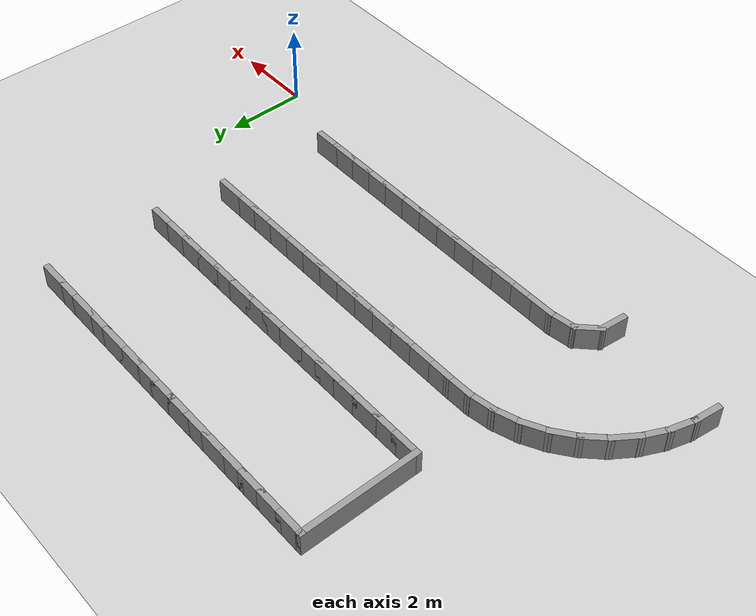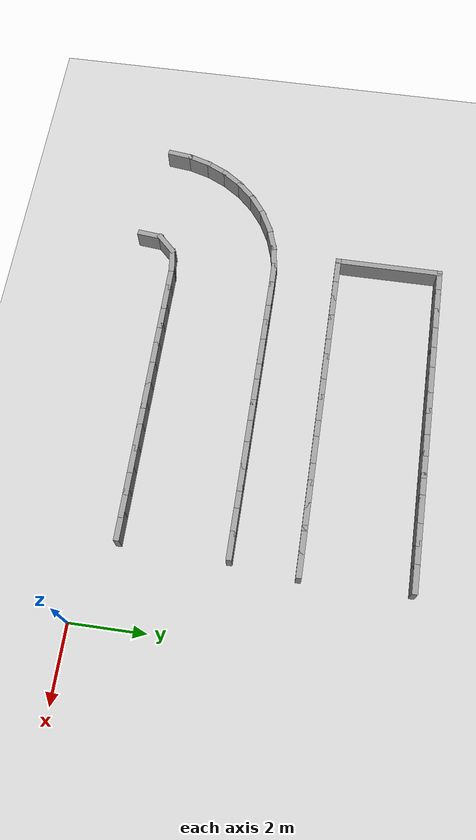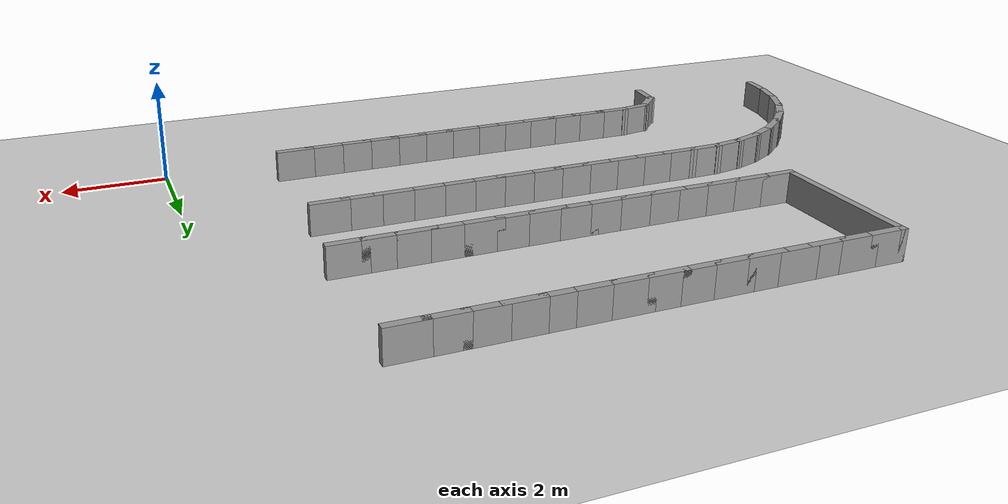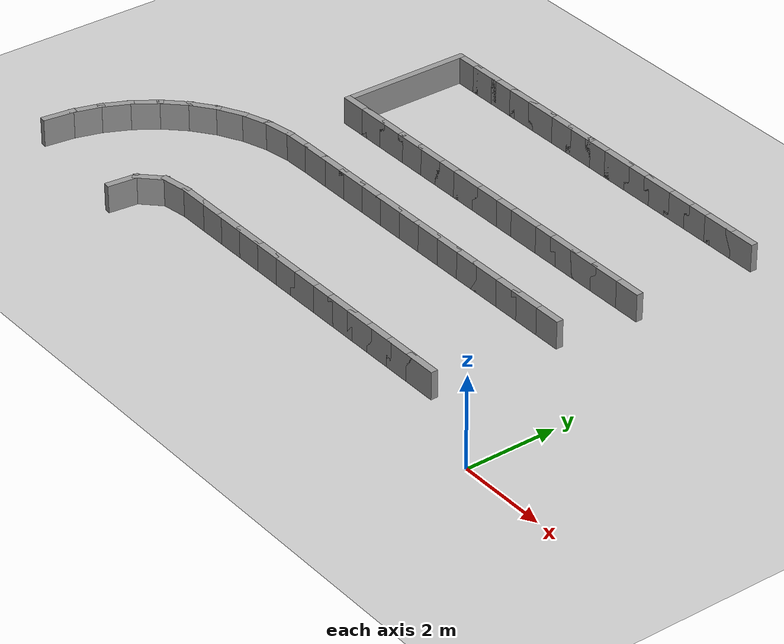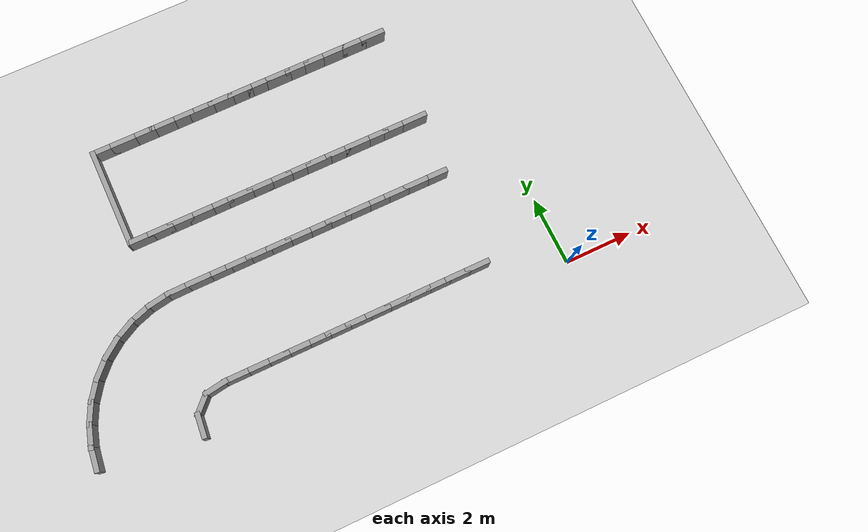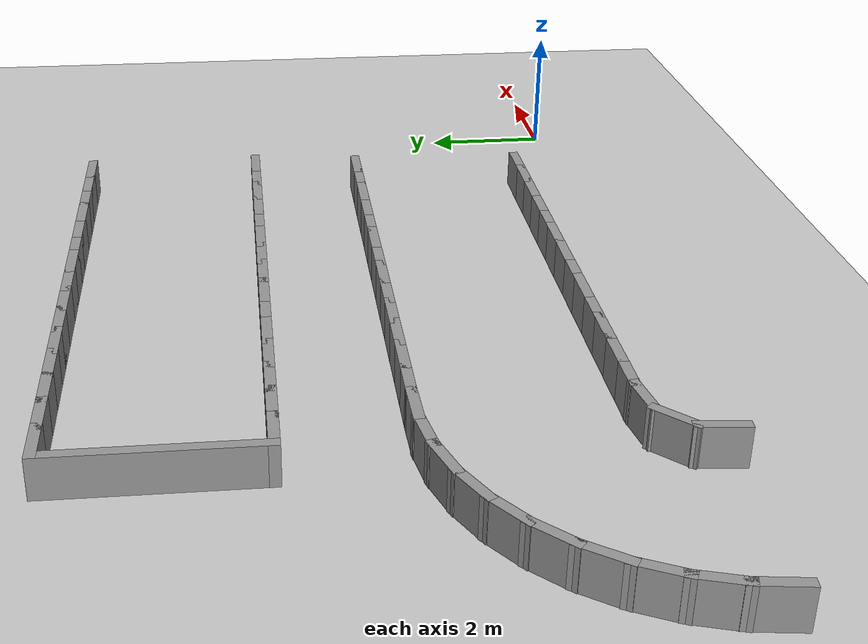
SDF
<sdf version="1.7">
 <world name="default">
  <model name="ground_plane">
   <static>1</static>
   <link name="link">
    <collision name="collision">
     <geometry><plane><normal>0 0 1</normal><size>100 100</size></plane></geometry>
     <surface><friction><ode><mu>100</mu><mu2>50</mu2></ode></friction></surface>
    </collision>
    <visual name="visual">
     <cast_shadows>0</cast_shadows>
     <geometry><plane><normal>0 0 1</normal><size>100 100</size></plane></geometry>
     <material>
      <script><uri>file://media/materials/scripts/gazebo.material</uri><name>Gazebo/Grey</name></script>
     </material>
    </visual>
   </link>
  </model>
  <model name="rand_serp_00">
   <link name="Wall_0">
    <collision name="Wall_0_Collision">
     <geometry><box><size>0.7500 0.1500 0.6000</size></box></geometry>
     <pose>0 0 0.3000 0 -0 0</pose>
    </collision>
    <visual name="Wall_0_Visual">
     <pose>0 0 0.3000 0 -0 0</pose>
     <geometry><box><size>0.7500 0.1500 0.6000</size></box></geometry>
     <material>
      <script><uri>file://media/materials/scripts/gazebo.material</uri><name>Gazebo/Grey</name></script>
      <ambient>1 1 1 1</ambient>
     </material>
    </visual>
    <pose>-10.5433 8.3501 0 0 -0 0.00000</pose>
   </link>
   <link name="Wall_1">
    <collision name="Wall_1_Collision">
     <geometry><box><size>0.7500 0.1500 0.6000</size></box></geometry>
     <pose>0 0 0.3000 0 -0 0</pose>
    </collision>
    <visual name="Wall_1_Visual">
     <pose>0 0 0.3000 0 -0 0</pose>
     <geometry><box><size>0.7500 0.1500 0.6000</size></box></geometry>
     <material>
      <script><uri>file://media/materials/scripts/gazebo.material</uri><name>Gazebo/Grey</name></script>
      <ambient>1 1 1 1</ambient>
     </material>
    </visual>
    <pose>-9.9433 8.3501 0 0 -0 0.00000</pose>
   </link>
   <link name="Wall_2">
    <collision name="Wall_2_Collision">
     <geometry><box><size>0.7500 0.1500 0.6000</size></box></geometry>
     <pose>0 0 0.3000 0 -0 0</pose>
    </collision>
    <visual name="Wall_2_Visual">
     <pose>0 0 0.3000 0 -0 0</pose>
     <geometry><box><size>0.7500 0.1500 0.6000</size></box></geometry>
     <material>
      <script><uri>file://media/materials/scripts/gazebo.material</uri><name>Gazebo/Grey</name></script>
      <ambient>1 1 1 1</ambient>
     </material>
    </visual>
    <pose>-9.3433 8.3501 0 0 -0 0.00000</pose>
   </link>
   <link name="Wall_3">
    <collision name="Wall_3_Collision">
     <geometry><box><size>0.7500 0.1500 0.6000</size></box></geometry>
     <pose>0 0 0.3000 0 -0 0</pose>
    </collision>
    <visual name="Wall_3_Visual">
     <pose>0 0 0.3000 0 -0 0</pose>
     <geometry><box><size>0.7500 0.1500 0.6000</size></box></geometry>
     <material>
      <script><uri>file://media/materials/scripts/gazebo.material</uri><name>Gazebo/Grey</name></script>
      <ambient>1 1 1 1</ambient>
     </material>
    </visual>
    <pose>-8.7433 8.3501 0 0 -0 0.00000</pose>
   </link>
   <link name="Wall_4">
    <collision name="Wall_4_Collision">
     <geometry><box><size>0.7500 0.1500 0.6000</size></box></geometry>
     <pose>0 0 0.3000 0 -0 0</pose>
    </collision>
    <visual name="Wall_4_Visual">
     <pose>0 0 0.3000 0 -0 0</pose>
     <geometry><box><size>0.7500 0.1500 0.6000</size></box></geometry>
     <material>
      <script><uri>file://media/materials/scripts/gazebo.material</uri><name>Gazebo/Grey</name></script>
      <ambient>1 1 1 1</ambient>
     </material>
    </visual>
    <pose>-8.1433 8.3501 0 0 -0 0.00000</pose>
   </link>
   <link name="Wall_5">
    <collision name="Wall_5_Collision">
     <geometry><box><size>0.7500 0.1500 0.6000</size></box></geometry>
     <pose>0 0 0.3000 0 -0 0</pose>
    </collision>
    <visual name="Wall_5_Visual">
     <pose>0 0 0.3000 0 -0 0</pose>
     <geometry><box><size>0.7500 0.1500 0.6000</size></box></geometry>
     <material>
      <script><uri>file://media/materials/scripts/gazebo.material</uri><name>Gazebo/Grey</name></script>
      <ambient>1 1 1 1</ambient>
     </material>
    </visual>
    <pose>-7.5433 8.3501 0 0 -0 0.00000</pose>
   </link>
   <link name="Wall_6">
    <collision name="Wall_6_Collision">
     <geometry><box><size>0.7500 0.1500 0.6000</size></box></geometry>
     <pose>0 0 0.3000 0 -0 0</pose>
    </collision>
    <visual name="Wall_6_Visual">
     <pose>0 0 0.3000 0 -0 0</pose>
     <geometry><box><size>0.7500 0.1500 0.6000</size></box></geometry>
     <material>
      <script><uri>file://media/materials/scripts/gazebo.material</uri><name>Gazebo/Grey</name></script>
      <ambient>1 1 1 1</ambient>
     </material>
    </visual>
    <pose>-6.9433 8.3501 0 0 -0 0.00000</pose>
   </link>
   <link name="Wall_7">
    <collision name="Wall_7_Collision">
     <geometry><box><size>0.7500 0.1500 0.6000</size></box></geometry>
     <pose>0 0 0.3000 0 -0 0</pose>
    </collision>
    <visual name="Wall_7_Visual">
     <pose>0 0 0.3000 0 -0 0</pose>
     <geometry><box><size>0.7500 0.1500 0.6000</size></box></geometry>
     <material>
      <script><uri>file://media/materials/scripts/gazebo.material</uri><name>Gazebo/Grey</name></script>
      <ambient>1 1 1 1</ambient>
     </material>
    </visual>
    <pose>-6.3433 8.3501 0 0 -0 0.00000</pose>
   </link>
   <link name="Wall_8">
    <collision name="Wall_8_Collision">
     <geometry><box><size>0.7500 0.1500 0.6000</size></box></geometry>
     <pose>0 0 0.3000 0 -0 0</pose>
    </collision>
    <visual name="Wall_8_Visual">
     <pose>0 0 0.3000 0 -0 0</pose>
     <geometry><box><size>0.7500 0.1500 0.6000</size></box></geometry>
     <material>
      <script><uri>file://media/materials/scripts/gazebo.material</uri><name>Gazebo/Grey</name></script>
      <ambient>1 1 1 1</ambient>
     </material>
    </visual>
    <pose>-5.7433 8.3501 0 0 -0 0.00000</pose>
   </link>
   <link name="Wall_9">
    <collision name="Wall_9_Collision">
     <geometry><box><size>0.7500 0.1500 0.6000</size></box></geometry>
     <pose>0 0 0.3000 0 -0 0</pose>
    </collision>
    <visual name="Wall_9_Visual">
     <pose>0 0 0.3000 0 -0 0</pose>
     <geometry><box><size>0.7500 0.1500 0.6000</size></box></geometry>
     <material>
      <script><uri>file://media/materials/scripts/gazebo.material</uri><name>Gazebo/Grey</name></script>
      <ambient>1 1 1 1</ambient>
     </material>
    </visual>
    <pose>-5.1433 8.3501 0 0 -0 0.00000</pose>
   </link>
   <link name="Wall_10">
    <collision name="Wall_10_Collision">
     <geometry><box><size>0.7500 0.1500 0.6000</size></box></geometry>
     <pose>0 0 0.3000 0 -0 0</pose>
    </collision>
    <visual name="Wall_10_Visual">
     <pose>0 0 0.3000 0 -0 0</pose>
     <geometry><box><size>0.7500 0.1500 0.6000</size></box></geometry>
     <material>
      <script><uri>file://media/materials/scripts/gazebo.material</uri><name>Gazebo/Grey</name></script>
      <ambient>1 1 1 1</ambient>
     </material>
    </visual>
    <pose>-4.5433 8.3501 0 0 -0 0.00000</pose>
   </link>
   <link name="Wall_11">
    <collision name="Wall_11_Collision">
     <geometry><box><size>0.7500 0.1500 0.6000</size></box></geometry>
     <pose>0 0 0.3000 0 -0 0</pose>
    </collision>
    <visual name="Wall_11_Visual">
     <pose>0 0 0.3000 0 -0 0</pose>
     <geometry><box><size>0.7500 0.1500 0.6000</size></box></geometry>
     <material>
      <script><uri>file://media/materials/scripts/gazebo.material</uri><name>Gazebo/Grey</name></script>
      <ambient>1 1 1 1</ambient>
     </material>
    </visual>
    <pose>-3.9433 8.3501 0 0 -0 0.00000</pose>
   </link>
   <link name="Wall_12">
    <collision name="Wall_12_Collision">
     <geometry><box><size>0.7500 0.1500 0.6000</size></box></geometry>
     <pose>0 0 0.3000 0 -0 0</pose>
    </collision>
    <visual name="Wall_12_Visual">
     <pose>0 0 0.3000 0 -0 0</pose>
     <geometry><box><size>0.7500 0.1500 0.6000</size></box></geometry>
     <material>
      <script><uri>file://media/materials/scripts/gazebo.material</uri><name>Gazebo/Grey</name></script>
      <ambient>1 1 1 1</ambient>
     </material>
    </visual>
    <pose>-3.3433 8.3501 0 0 -0 0.00000</pose>
   </link>
   <link name="Wall_13">
    <collision name="Wall_13_Collision">
     <geometry><box><size>0.7500 0.1500 0.6000</size></box></geometry>
     <pose>0 0 0.3000 0 -0 0</pose>
    </collision>
    <visual name="Wall_13_Visual">
     <pose>0 0 0.3000 0 -0 0</pose>
     <geometry><box><size>0.7500 0.1500 0.6000</size></box></geometry>
     <material>
      <script><uri>file://media/materials/scripts/gazebo.material</uri><name>Gazebo/Grey</name></script>
      <ambient>1 1 1 1</ambient>
     </material>
    </visual>
    <pose>-2.7433 8.3501 0 0 -0 0.00000</pose>
   </link>
   <link name="Wall_14">
    <collision name="Wall_14_Collision">
     <geometry><box><size>0.7500 0.1500 0.6000</size></box></geometry>
     <pose>0 0 0.3000 0 -0 0</pose>
    </collision>
    <visual name="Wall_14_Visual">
     <pose>0 0 0.3000 0 -0 0</pose>
     <geometry><box><size>0.7500 0.1500 0.6000</size></box></geometry>
     <material>
      <script><uri>file://media/materials/scripts/gazebo.material</uri><name>Gazebo/Grey</name></script>
      <ambient>1 1 1 1</ambient>
     </material>
    </visual>
    <pose>-2.1433 8.3501 0 0 -0 0.00000</pose>
   </link>
   <link name="Wall_75">
    <collision name="Wall_75_Collision">
     <geometry><box><size>0.7500 0.1500 0.6000</size></box></geometry>
     <pose>0 0 0.3000 0 -0 0</pose>
    </collision>
    <visual name="Wall_75_Visual">
     <pose>0 0 0.3000 0 -0 0</pose>
     <geometry><box><size>0.7500 0.1500 0.6000</size></box></geometry>
     <material>
      <script><uri>file://media/materials/scripts/gazebo.material</uri><name>Gazebo/Grey</name></script>
      <ambient>1 1 1 1</ambient>
     </material>
    </visual>
    <pose>-2.4404 0.8823 0 0 -0 3.14159</pose>
   </link>
   <link name="Wall_76">
    <collision name="Wall_76_Collision">
     <geometry><box><size>0.7500 0.1500 0.6000</size></box></geometry>
     <pose>0 0 0.3000 0 -0 0</pose>
    </collision>
    <visual name="Wall_76_Visual">
     <pose>0 0 0.3000 0 -0 0</pose>
     <geometry><box><size>0.7500 0.1500 0.6000</size></box></geometry>
     <material>
      <script><uri>file://media/materials/scripts/gazebo.material</uri><name>Gazebo/Grey</name></script>
      <ambient>1 1 1 1</ambient>
     </material>
    </visual>
    <pose>-3.0404 0.8823 0 0 -0 3.14159</pose>
   </link>
   <link name="Wall_77">
    <collision name="Wall_77_Collision">
     <geometry><box><size>0.7500 0.1500 0.6000</size></box></geometry>
     <pose>0 0 0.3000 0 -0 0</pose>
    </collision>
    <visual name="Wall_77_Visual">
     <pose>0 0 0.3000 0 -0 0</pose>
     <geometry><box><size>0.7500 0.1500 0.6000</size></box></geometry>
     <material>
      <script><uri>file://media/materials/scripts/gazebo.material</uri><name>Gazebo/Grey</name></script>
      <ambient>1 1 1 1</ambient>
     </material>
    </visual>
    <pose>-3.6404 0.8823 0 0 -0 3.14159</pose>
   </link>
   <link name="Wall_78">
    <collision name="Wall_78_Collision">
     <geometry><box><size>0.7500 0.1500 0.6000</size></box></geometry>
     <pose>0 0 0.3000 0 -0 0</pose>
    </collision>
    <visual name="Wall_78_Visual">
     <pose>0 0 0.3000 0 -0 0</pose>
     <geometry><box><size>0.7500 0.1500 0.6000</size></box></geometry>
     <material>
      <script><uri>file://media/materials/scripts/gazebo.material</uri><name>Gazebo/Grey</name></script>
      <ambient>1 1 1 1</ambient>
     </material>
    </visual>
    <pose>-4.2404 0.8823 0 0 -0 3.14159</pose>
   </link>
   <link name="Wall_79">
    <collision name="Wall_79_Collision">
     <geometry><box><size>0.7500 0.1500 0.6000</size></box></geometry>
     <pose>0 0 0.3000 0 -0 0</pose>
    </collision>
    <visual name="Wall_79_Visual">
     <pose>0 0 0.3000 0 -0 0</pose>
     <geometry><box><size>0.7500 0.1500 0.6000</size></box></geometry>
     <material>
      <script><uri>file://media/materials/scripts/gazebo.material</uri><name>Gazebo/Grey</name></script>
      <ambient>1 1 1 1</ambient>
     </material>
    </visual>
    <pose>-4.8404 0.8823 0 0 -0 3.14159</pose>
   </link>
   <link name="Wall_80">
    <collision name="Wall_80_Collision">
     <geometry><box><size>0.7500 0.1500 0.6000</size></box></geometry>
     <pose>0 0 0.3000 0 -0 0</pose>
    </collision>
    <visual name="Wall_80_Visual">
     <pose>0 0 0.3000 0 -0 0</pose>
     <geometry><box><size>0.7500 0.1500 0.6000</size></box></geometry>
     <material>
      <script><uri>file://media/materials/scripts/gazebo.material</uri><name>Gazebo/Grey</name></script>
      <ambient>1 1 1 1</ambient>
     </material>
    </visual>
    <pose>-5.4404 0.8823 0 0 -0 3.14159</pose>
   </link>
   <link name="Wall_81">
    <collision name="Wall_81_Collision">
     <geometry><box><size>0.7500 0.1500 0.6000</size></box></geometry>
     <pose>0 0 0.3000 0 -0 0</pose>
    </collision>
    <visual name="Wall_81_Visual">
     <pose>0 0 0.3000 0 -0 0</pose>
     <geometry><box><size>0.7500 0.1500 0.6000</size></box></geometry>
     <material>
      <script><uri>file://media/materials/scripts/gazebo.material</uri><name>Gazebo/Grey</name></script>
      <ambient>1 1 1 1</ambient>
     </material>
    </visual>
    <pose>-6.0404 0.8823 0 0 -0 3.14159</pose>
   </link>
   <link name="Wall_82">
    <collision name="Wall_82_Collision">
     <geometry><box><size>0.7500 0.1500 0.6000</size></box></geometry>
     <pose>0 0 0.3000 0 -0 0</pose>
    </collision>
    <visual name="Wall_82_Visual">
     <pose>0 0 0.3000 0 -0 0</pose>
     <geometry><box><size>0.7500 0.1500 0.6000</size></box></geometry>
     <material>
      <script><uri>file://media/materials/scripts/gazebo.material</uri><name>Gazebo/Grey</name></script>
      <ambient>1 1 1 1</ambient>
     </material>
    </visual>
    <pose>-6.6404 0.8823 0 0 -0 3.14159</pose>
   </link>
   <link name="Wall_83">
    <collision name="Wall_83_Collision">
     <geometry><box><size>0.7500 0.1500 0.6000</size></box></geometry>
     <pose>0 0 0.3000 0 -0 0</pose>
    </collision>
    <visual name="Wall_83_Visual">
     <pose>0 0 0.3000 0 -0 0</pose>
     <geometry><box><size>0.7500 0.1500 0.6000</size></box></geometry>
     <material>
      <script><uri>file://media/materials/scripts/gazebo.material</uri><name>Gazebo/Grey</name></script>
      <ambient>1 1 1 1</ambient>
     </material>
    </visual>
    <pose>-7.2404 0.8823 0 0 -0 3.14159</pose>
   </link>
   <link name="Wall_84">
    <collision name="Wall_84_Collision">
     <geometry><box><size>0.7500 0.1500 0.6000</size></box></geometry>
     <pose>0 0 0.3000 0 -0 0</pose>
    </collision>
    <visual name="Wall_84_Visual">
     <pose>0 0 0.3000 0 -0 0</pose>
     <geometry><box><size>0.7500 0.1500 0.6000</size></box></geometry>
     <material>
      <script><uri>file://media/materials/scripts/gazebo.material</uri><name>Gazebo/Grey</name></script>
      <ambient>1 1 1 1</ambient>
     </material>
    </visual>
    <pose>-7.8404 0.8823 0 0 -0 3.14159</pose>
   </link>
   <link name="Wall_85">
    <collision name="Wall_85_Collision">
     <geometry><box><size>0.7500 0.1500 0.6000</size></box></geometry>
     <pose>0 0 0.3000 0 -0 0</pose>
    </collision>
    <visual name="Wall_85_Visual">
     <pose>0 0 0.3000 0 -0 0</pose>
     <geometry><box><size>0.7500 0.1500 0.6000</size></box></geometry>
     <material>
      <script><uri>file://media/materials/scripts/gazebo.material</uri><name>Gazebo/Grey</name></script>
      <ambient>1 1 1 1</ambient>
     </material>
    </visual>
    <pose>-8.4404 0.8823 0 0 -0 3.14159</pose>
   </link>
   <link name="Wall_86">
    <collision name="Wall_86_Collision">
     <geometry><box><size>0.7500 0.1500 0.6000</size></box></geometry>
     <pose>0 0 0.3000 0 -0 0</pose>
    </collision>
    <visual name="Wall_86_Visual">
     <pose>0 0 0.3000 0 -0 0</pose>
     <geometry><box><size>0.7500 0.1500 0.6000</size></box></geometry>
     <material>
      <script><uri>file://media/materials/scripts/gazebo.material</uri><name>Gazebo/Grey</name></script>
      <ambient>1 1 1 1</ambient>
     </material>
    </visual>
    <pose>-9.0404 0.8823 0 0 -0 3.14159</pose>
   </link>
   <link name="Wall_87">
    <collision name="Wall_87_Collision">
     <geometry><box><size>0.7500 0.1500 0.6000</size></box></geometry>
     <pose>0 0 0.3000 0 -0 0</pose>
    </collision>
    <visual name="Wall_87_Visual">
     <pose>0 0 0.3000 0 -0 0</pose>
     <geometry><box><size>0.7500 0.1500 0.6000</size></box></geometry>
     <material>
      <script><uri>file://media/materials/scripts/gazebo.material</uri><name>Gazebo/Grey</name></script>
      <ambient>1 1 1 1</ambient>
     </material>
    </visual>
    <pose>-9.6404 0.8823 0 0 -0 3.14159</pose>
   </link>
   <link name="Wall_88">
    <collision name="Wall_88_Collision">
     <geometry><box><size>0.7433 0.1500 0.6000</size></box></geometry>
     <pose>0 0 0.3000 0 -0 0</pose>
    </collision>
    <visual name="Wall_88_Visual">
     <pose>0 0 0.3000 0 -0 0</pose>
     <geometry><box><size>0.7433 0.1500 0.6000</size></box></geometry>
     <material>
      <script><uri>file://media/materials/scripts/gazebo.material</uri><name>Gazebo/Grey</name></script>
      <ambient>1 1 1 1</ambient>
     </material>
    </visual>
    <pose>-10.2337 0.8383 0 0 -0 -2.99276</pose>
   </link>
   <link name="Wall_89">
    <collision name="Wall_89_Collision">
     <geometry><box><size>0.7384 0.1500 0.6000</size></box></geometry>
     <pose>0 0 0.3000 0 -0 0</pose>
    </collision>
    <visual name="Wall_89_Visual">
     <pose>0 0 0.3000 0 -0 0</pose>
     <geometry><box><size>0.7384 0.1500 0.6000</size></box></geometry>
     <material>
      <script><uri>file://media/materials/scripts/gazebo.material</uri><name>Gazebo/Grey</name></script>
      <ambient>1 1 1 1</ambient>
     </material>
    </visual>
    <pose>-10.7341 0.5853 0 0 -0 -2.35152</pose>
   </link>
   <link name="Wall_90">
    <collision name="Wall_90_Collision">
     <geometry><box><size>0.7384 0.1500 0.6000</size></box></geometry>
     <pose>0 0 0.3000 0 -0 0</pose>
    </collision>
    <visual name="Wall_90_Visual">
     <pose>0 0 0.3000 0 -0 0</pose>
     <geometry><box><size>0.7384 0.1500 0.6000</size></box></geometry>
     <material>
      <script><uri>file://media/materials/scripts/gazebo.material</uri><name>Gazebo/Grey</name></script>
      <ambient>1 1 1 1</ambient>
     </material>
    </visual>
    <pose>-10.9708 0.0836 0 0 -0 -1.67146</pose>
   </link>
   <link name="Wall_182">
    <collision name="Wall_182_Collision">
     <geometry><box><size>0.7500 0.1500 0.6000</size></box></geometry>
     <pose>0 0 0.3000 0 -0 0</pose>
    </collision>
    <visual name="Wall_182_Visual">
     <pose>0 0 0.3000 0 -0 0</pose>
     <geometry><box><size>0.7500 0.1500 0.6000</size></box></geometry>
     <material>
      <script><uri>file://media/materials/scripts/gazebo.material</uri><name>Gazebo/Grey</name></script>
      <ambient>1 1 1 1</ambient>
     </material>
    </visual>
    <pose>-10.5433 5.4985 0 0 -0 0.00000</pose>
   </link>
   <link name="Wall_183">
    <collision name="Wall_183_Collision">
     <geometry><box><size>0.7500 0.1500 0.6000</size></box></geometry>
     <pose>0 0 0.3000 0 -0 0</pose>
    </collision>
    <visual name="Wall_183_Visual">
     <pose>0 0 0.3000 0 -0 0</pose>
     <geometry><box><size>0.7500 0.1500 0.6000</size></box></geometry>
     <material>
      <script><uri>file://media/materials/scripts/gazebo.material</uri><name>Gazebo/Grey</name></script>
      <ambient>1 1 1 1</ambient>
     </material>
    </visual>
    <pose>-9.9433 5.4985 0 0 -0 0.00000</pose>
   </link>
   <link name="Wall_184">
    <collision name="Wall_184_Collision">
     <geometry><box><size>0.7500 0.1500 0.6000</size></box></geometry>
     <pose>0 0 0.3000 0 -0 0</pose>
    </collision>
    <visual name="Wall_184_Visual">
     <pose>0 0 0.3000 0 -0 0</pose>
     <geometry><box><size>0.7500 0.1500 0.6000</size></box></geometry>
     <material>
      <script><uri>file://media/materials/scripts/gazebo.material</uri><name>Gazebo/Grey</name></script>
      <ambient>1 1 1 1</ambient>
     </material>
    </visual>
    <pose>-9.3433 5.4985 0 0 -0 0.00000</pose>
   </link>
   <link name="Wall_185">
    <collision name="Wall_185_Collision">
     <geometry><box><size>0.7500 0.1500 0.6000</size></box></geometry>
     <pose>0 0 0.3000 0 -0 0</pose>
    </collision>
    <visual name="Wall_185_Visual">
     <pose>0 0 0.3000 0 -0 0</pose>
     <geometry><box><size>0.7500 0.1500 0.6000</size></box></geometry>
     <material>
      <script><uri>file://media/materials/scripts/gazebo.material</uri><name>Gazebo/Grey</name></script>
      <ambient>1 1 1 1</ambient>
     </material>
    </visual>
    <pose>-8.7433 5.4985 0 0 -0 0.00000</pose>
   </link>
   <link name="Wall_186">
    <collision name="Wall_186_Collision">
     <geometry><box><size>0.7500 0.1500 0.6000</size></box></geometry>
     <pose>0 0 0.3000 0 -0 0</pose>
    </collision>
    <visual name="Wall_186_Visual">
     <pose>0 0 0.3000 0 -0 0</pose>
     <geometry><box><size>0.7500 0.1500 0.6000</size></box></geometry>
     <material>
      <script><uri>file://media/materials/scripts/gazebo.material</uri><name>Gazebo/Grey</name></script>
      <ambient>1 1 1 1</ambient>
     </material>
    </visual>
    <pose>-8.1433 5.4985 0 0 -0 0.00000</pose>
   </link>
   <link name="Wall_187">
    <collision name="Wall_187_Collision">
     <geometry><box><size>0.7500 0.1500 0.6000</size></box></geometry>
     <pose>0 0 0.3000 0 -0 0</pose>
    </collision>
    <visual name="Wall_187_Visual">
     <pose>0 0 0.3000 0 -0 0</pose>
     <geometry><box><size>0.7500 0.1500 0.6000</size></box></geometry>
     <material>
      <script><uri>file://media/materials/scripts/gazebo.material</uri><name>Gazebo/Grey</name></script>
      <ambient>1 1 1 1</ambient>
     </material>
    </visual>
    <pose>-7.5433 5.4985 0 0 -0 0.00000</pose>
   </link>
   <link name="Wall_188">
    <collision name="Wall_188_Collision">
     <geometry><box><size>0.7500 0.1500 0.6000</size></box></geometry>
     <pose>0 0 0.3000 0 -0 0</pose>
    </collision>
    <visual name="Wall_188_Visual">
     <pose>0 0 0.3000 0 -0 0</pose>
     <geometry><box><size>0.7500 0.1500 0.6000</size></box></geometry>
     <material>
      <script><uri>file://media/materials/scripts/gazebo.material</uri><name>Gazebo/Grey</name></script>
      <ambient>1 1 1 1</ambient>
     </material>
    </visual>
    <pose>-6.9433 5.4985 0 0 -0 0.00000</pose>
   </link>
   <link name="Wall_189">
    <collision name="Wall_189_Collision">
     <geometry><box><size>0.7500 0.1500 0.6000</size></box></geometry>
     <pose>0 0 0.3000 0 -0 0</pose>
    </collision>
    <visual name="Wall_189_Visual">
     <pose>0 0 0.3000 0 -0 0</pose>
     <geometry><box><size>0.7500 0.1500 0.6000</size></box></geometry>
     <material>
      <script><uri>file://media/materials/scripts/gazebo.material</uri><name>Gazebo/Grey</name></script>
      <ambient>1 1 1 1</ambient>
     </material>
    </visual>
    <pose>-6.3433 5.4985 0 0 -0 0.00000</pose>
   </link>
   <link name="Wall_190">
    <collision name="Wall_190_Collision">
     <geometry><box><size>0.7500 0.1500 0.6000</size></box></geometry>
     <pose>0 0 0.3000 0 -0 0</pose>
    </collision>
    <visual name="Wall_190_Visual">
     <pose>0 0 0.3000 0 -0 0</pose>
     <geometry><box><size>0.7500 0.1500 0.6000</size></box></geometry>
     <material>
      <script><uri>file://media/materials/scripts/gazebo.material</uri><name>Gazebo/Grey</name></script>
      <ambient>1 1 1 1</ambient>
     </material>
    </visual>
    <pose>-5.7433 5.4985 0 0 -0 0.00000</pose>
   </link>
   <link name="Wall_191">
    <collision name="Wall_191_Collision">
     <geometry><box><size>0.7500 0.1500 0.6000</size></box></geometry>
     <pose>0 0 0.3000 0 -0 0</pose>
    </collision>
    <visual name="Wall_191_Visual">
     <pose>0 0 0.3000 0 -0 0</pose>
     <geometry><box><size>0.7500 0.1500 0.6000</size></box></geometry>
     <material>
      <script><uri>file://media/materials/scripts/gazebo.material</uri><name>Gazebo/Grey</name></script>
      <ambient>1 1 1 1</ambient>
     </material>
    </visual>
    <pose>-5.1433 5.4985 0 0 -0 0.00000</pose>
   </link>
   <link name="Wall_192">
    <collision name="Wall_192_Collision">
     <geometry><box><size>0.7500 0.1500 0.6000</size></box></geometry>
     <pose>0 0 0.3000 0 -0 0</pose>
    </collision>
    <visual name="Wall_192_Visual">
     <pose>0 0 0.3000 0 -0 0</pose>
     <geometry><box><size>0.7500 0.1500 0.6000</size></box></geometry>
     <material>
      <script><uri>file://media/materials/scripts/gazebo.material</uri><name>Gazebo/Grey</name></script>
      <ambient>1 1 1 1</ambient>
     </material>
    </visual>
    <pose>-4.5433 5.4985 0 0 -0 0.00000</pose>
   </link>
   <link name="Wall_193">
    <collision name="Wall_193_Collision">
     <geometry><box><size>0.7500 0.1500 0.6000</size></box></geometry>
     <pose>0 0 0.3000 0 -0 0</pose>
    </collision>
    <visual name="Wall_193_Visual">
     <pose>0 0 0.3000 0 -0 0</pose>
     <geometry><box><size>0.7500 0.1500 0.6000</size></box></geometry>
     <material>
      <script><uri>file://media/materials/scripts/gazebo.material</uri><name>Gazebo/Grey</name></script>
      <ambient>1 1 1 1</ambient>
     </material>
    </visual>
    <pose>-3.9433 5.4985 0 0 -0 0.00000</pose>
   </link>
   <link name="Wall_194">
    <collision name="Wall_194_Collision">
     <geometry><box><size>0.7500 0.1500 0.6000</size></box></geometry>
     <pose>0 0 0.3000 0 -0 0</pose>
    </collision>
    <visual name="Wall_194_Visual">
     <pose>0 0 0.3000 0 -0 0</pose>
     <geometry><box><size>0.7500 0.1500 0.6000</size></box></geometry>
     <material>
      <script><uri>file://media/materials/scripts/gazebo.material</uri><name>Gazebo/Grey</name></script>
      <ambient>1 1 1 1</ambient>
     </material>
    </visual>
    <pose>-3.3433 5.4985 0 0 -0 0.00000</pose>
   </link>
   <link name="Wall_195">
    <collision name="Wall_195_Collision">
     <geometry><box><size>0.7500 0.1500 0.6000</size></box></geometry>
     <pose>0 0 0.3000 0 -0 0</pose>
    </collision>
    <visual name="Wall_195_Visual">
     <pose>0 0 0.3000 0 -0 0</pose>
     <geometry><box><size>0.7500 0.1500 0.6000</size></box></geometry>
     <material>
      <script><uri>file://media/materials/scripts/gazebo.material</uri><name>Gazebo/Grey</name></script>
      <ambient>1 1 1 1</ambient>
     </material>
    </visual>
    <pose>-2.7433 5.4985 0 0 -0 0.00000</pose>
   </link>
   <link name="Wall_196">
    <collision name="Wall_196_Collision">
     <geometry><box><size>0.7500 0.1500 0.6000</size></box></geometry>
     <pose>0 0 0.3000 0 -0 0</pose>
    </collision>
    <visual name="Wall_196_Visual">
     <pose>0 0 0.3000 0 -0 0</pose>
     <geometry><box><size>0.7500 0.1500 0.6000</size></box></geometry>
     <material>
      <script><uri>file://media/materials/scripts/gazebo.material</uri><name>Gazebo/Grey</name></script>
      <ambient>1 1 1 1</ambient>
     </material>
    </visual>
    <pose>-2.1433 5.4985 0 0 -0 0.00000</pose>
   </link>
   <link name="Wall_242">
    <collision name="Wall_242_Collision">
     <geometry><box><size>0.7500 0.1500 0.6000</size></box></geometry>
     <pose>0 0 0.3000 0 -0 0</pose>
    </collision>
    <visual name="Wall_242_Visual">
     <pose>0 0 0.3000 0 -0 0</pose>
     <geometry><box><size>0.7500 0.1500 0.6000</size></box></geometry>
     <material>
      <script><uri>file://media/materials/scripts/gazebo.material</uri><name>Gazebo/Grey</name></script>
      <ambient>1 1 1 1</ambient>
     </material>
    </visual>
    <pose>-2.3416 3.7339 0 0 -0 3.14159</pose>
   </link>
   <link name="Wall_243">
    <collision name="Wall_243_Collision">
     <geometry><box><size>0.7500 0.1500 0.6000</size></box></geometry>
     <pose>0 0 0.3000 0 -0 0</pose>
    </collision>
    <visual name="Wall_243_Visual">
     <pose>0 0 0.3000 0 -0 0</pose>
     <geometry><box><size>0.7500 0.1500 0.6000</size></box></geometry>
     <material>
      <script><uri>file://media/materials/scripts/gazebo.material</uri><name>Gazebo/Grey</name></script>
      <ambient>1 1 1 1</ambient>
     </material>
    </visual>
    <pose>-2.9416 3.7339 0 0 -0 3.14159</pose>
   </link>
   <link name="Wall_244">
    <collision name="Wall_244_Collision">
     <geometry><box><size>0.7500 0.1500 0.6000</size></box></geometry>
     <pose>0 0 0.3000 0 -0 0</pose>
    </collision>
    <visual name="Wall_244_Visual">
     <pose>0 0 0.3000 0 -0 0</pose>
     <geometry><box><size>0.7500 0.1500 0.6000</size></box></geometry>
     <material>
      <script><uri>file://media/materials/scripts/gazebo.material</uri><name>Gazebo/Grey</name></script>
      <ambient>1 1 1 1</ambient>
     </material>
    </visual>
    <pose>-3.5416 3.7339 0 0 -0 3.14159</pose>
   </link>
   <link name="Wall_245">
    <collision name="Wall_245_Collision">
     <geometry><box><size>0.7500 0.1500 0.6000</size></box></geometry>
     <pose>0 0 0.3000 0 -0 0</pose>
    </collision>
    <visual name="Wall_245_Visual">
     <pose>0 0 0.3000 0 -0 0</pose>
     <geometry><box><size>0.7500 0.1500 0.6000</size></box></geometry>
     <material>
      <script><uri>file://media/materials/scripts/gazebo.material</uri><name>Gazebo/Grey</name></script>
      <ambient>1 1 1 1</ambient>
     </material>
    </visual>
    <pose>-4.1416 3.7339 0 0 -0 3.14159</pose>
   </link>
   <link name="Wall_246">
    <collision name="Wall_246_Collision">
     <geometry><box><size>0.7500 0.1500 0.6000</size></box></geometry>
     <pose>0 0 0.3000 0 -0 0</pose>
    </collision>
    <visual name="Wall_246_Visual">
     <pose>0 0 0.3000 0 -0 0</pose>
     <geometry><box><size>0.7500 0.1500 0.6000</size></box></geometry>
     <material>
      <script><uri>file://media/materials/scripts/gazebo.material</uri><name>Gazebo/Grey</name></script>
      <ambient>1 1 1 1</ambient>
     </material>
    </visual>
    <pose>-4.7416 3.7339 0 0 -0 3.14159</pose>
   </link>
   <link name="Wall_247">
    <collision name="Wall_247_Collision">
     <geometry><box><size>0.7500 0.1500 0.6000</size></box></geometry>
     <pose>0 0 0.3000 0 -0 0</pose>
    </collision>
    <visual name="Wall_247_Visual">
     <pose>0 0 0.3000 0 -0 0</pose>
     <geometry><box><size>0.7500 0.1500 0.6000</size></box></geometry>
     <material>
      <script><uri>file://media/materials/scripts/gazebo.material</uri><name>Gazebo/Grey</name></script>
      <ambient>1 1 1 1</ambient>
     </material>
    </visual>
    <pose>-5.3416 3.7339 0 0 -0 3.14159</pose>
   </link>
   <link name="Wall_248">
    <collision name="Wall_248_Collision">
     <geometry><box><size>0.7500 0.1500 0.6000</size></box></geometry>
     <pose>0 0 0.3000 0 -0 0</pose>
    </collision>
    <visual name="Wall_248_Visual">
     <pose>0 0 0.3000 0 -0 0</pose>
     <geometry><box><size>0.7500 0.1500 0.6000</size></box></geometry>
     <material>
      <script><uri>file://media/materials/scripts/gazebo.material</uri><name>Gazebo/Grey</name></script>
      <ambient>1 1 1 1</ambient>
     </material>
    </visual>
    <pose>-5.9416 3.7339 0 0 -0 3.14159</pose>
   </link>
   <link name="Wall_249">
    <collision name="Wall_249_Collision">
     <geometry><box><size>0.7500 0.1500 0.6000</size></box></geometry>
     <pose>0 0 0.3000 0 -0 0</pose>
    </collision>
    <visual name="Wall_249_Visual">
     <pose>0 0 0.3000 0 -0 0</pose>
     <geometry><box><size>0.7500 0.1500 0.6000</size></box></geometry>
     <material>
      <script><uri>file://media/materials/scripts/gazebo.material</uri><name>Gazebo/Grey</name></script>
      <ambient>1 1 1 1</ambient>
     </material>
    </visual>
    <pose>-6.5416 3.7339 0 0 -0 3.14159</pose>
   </link>
   <link name="Wall_250">
    <collision name="Wall_250_Collision">
     <geometry><box><size>0.7500 0.1500 0.6000</size></box></geometry>
     <pose>0 0 0.3000 0 -0 0</pose>
    </collision>
    <visual name="Wall_250_Visual">
     <pose>0 0 0.3000 0 -0 0</pose>
     <geometry><box><size>0.7500 0.1500 0.6000</size></box></geometry>
     <material>
      <script><uri>file://media/materials/scripts/gazebo.material</uri><name>Gazebo/Grey</name></script>
      <ambient>1 1 1 1</ambient>
     </material>
    </visual>
    <pose>-7.1416 3.7339 0 0 -0 3.14159</pose>
   </link>
   <link name="Wall_251">
    <collision name="Wall_251_Collision">
     <geometry><box><size>0.7500 0.1500 0.6000</size></box></geometry>
     <pose>0 0 0.3000 0 -0 0</pose>
    </collision>
    <visual name="Wall_251_Visual">
     <pose>0 0 0.3000 0 -0 0</pose>
     <geometry><box><size>0.7500 0.1500 0.6000</size></box></geometry>
     <material>
      <script><uri>file://media/materials/scripts/gazebo.material</uri><name>Gazebo/Grey</name></script>
      <ambient>1 1 1 1</ambient>
     </material>
    </visual>
    <pose>-7.7416 3.7339 0 0 -0 3.14159</pose>
   </link>
   <link name="Wall_252">
    <collision name="Wall_252_Collision">
     <geometry><box><size>0.7500 0.1500 0.6000</size></box></geometry>
     <pose>0 0 0.3000 0 -0 0</pose>
    </collision>
    <visual name="Wall_252_Visual">
     <pose>0 0 0.3000 0 -0 0</pose>
     <geometry><box><size>0.7500 0.1500 0.6000</size></box></geometry>
     <material>
      <script><uri>file://media/materials/scripts/gazebo.material</uri><name>Gazebo/Grey</name></script>
      <ambient>1 1 1 1</ambient>
     </material>
    </visual>
    <pose>-8.3416 3.7339 0 0 -0 3.14159</pose>
   </link>
   <link name="Wall_253">
    <collision name="Wall_253_Collision">
     <geometry><box><size>0.7500 0.1500 0.6000</size></box></geometry>
     <pose>0 0 0.3000 0 -0 0</pose>
    </collision>
    <visual name="Wall_253_Visual">
     <pose>0 0 0.3000 0 -0 0</pose>
     <geometry><box><size>0.7500 0.1500 0.6000</size></box></geometry>
     <material>
      <script><uri>file://media/materials/scripts/gazebo.material</uri><name>Gazebo/Grey</name></script>
      <ambient>1 1 1 1</ambient>
     </material>
    </visual>
    <pose>-8.9416 3.7339 0 0 -0 3.14159</pose>
   </link>
   <link name="Wall_254">
    <collision name="Wall_254_Collision">
     <geometry><box><size>0.7500 0.1500 0.6000</size></box></geometry>
     <pose>0 0 0.3000 0 -0 0</pose>
    </collision>
    <visual name="Wall_254_Visual">
     <pose>0 0 0.3000 0 -0 0</pose>
     <geometry><box><size>0.7500 0.1500 0.6000</size></box></geometry>
     <material>
      <script><uri>file://media/materials/scripts/gazebo.material</uri><name>Gazebo/Grey</name></script>
      <ambient>1 1 1 1</ambient>
     </material>
    </visual>
    <pose>-9.5416 3.7339 0 0 -0 3.14159</pose>
   </link>
   <link name="Wall_255">
    <collision name="Wall_255_Collision">
     <geometry><box><size>0.7498 0.1500 0.6000</size></box></geometry>
     <pose>0 0 0.3000 0 -0 0</pose>
    </collision>
    <visual name="Wall_255_Visual">
     <pose>0 0 0.3000 0 -0 0</pose>
     <geometry><box><size>0.7498 0.1500 0.6000</size></box></geometry>
     <material>
      <script><uri>file://media/materials/scripts/gazebo.material</uri><name>Gazebo/Grey</name></script>
      <ambient>1 1 1 1</ambient>
     </material>
    </visual>
    <pose>-10.1415 3.7279 0 0 -0 -3.12169</pose>
   </link>
   <link name="Wall_256">
    <collision name="Wall_256_Collision">
     <geometry><box><size>0.7494 0.1500 0.6000</size></box></geometry>
     <pose>0 0 0.3000 0 -0 0</pose>
    </collision>
    <visual name="Wall_256_Visual">
     <pose>0 0 0.3000 0 -0 0</pose>
     <geometry><box><size>0.7494 0.1500 0.6000</size></box></geometry>
     <material>
      <script><uri>file://media/materials/scripts/gazebo.material</uri><name>Gazebo/Grey</name></script>
      <ambient>1 1 1 1</ambient>
     </material>
    </visual>
    <pose>-10.7372 3.6741 0 0 -0 -2.98116</pose>
   </link>
   <link name="Wall_257">
    <collision name="Wall_257_Collision">
     <geometry><box><size>0.7494 0.1500 0.6000</size></box></geometry>
     <pose>0 0 0.3000 0 -0 0</pose>
    </collision>
    <visual name="Wall_257_Visual">
     <pose>0 0 0.3000 0 -0 0</pose>
     <geometry><box><size>0.7494 0.1500 0.6000</size></box></geometry>
     <material>
      <script><uri>file://media/materials/scripts/gazebo.material</uri><name>Gazebo/Grey</name></script>
      <ambient>1 1 1 1</ambient>
     </material>
    </visual>
    <pose>-11.3174 3.5316 0 0 -0 -2.82048</pose>
   </link>
   <link name="Wall_258">
    <collision name="Wall_258_Collision">
     <geometry><box><size>0.7493 0.1500 0.6000</size></box></geometry>
     <pose>0 0 0.3000 0 -0 0</pose>
    </collision>
    <visual name="Wall_258_Visual">
     <pose>0 0 0.3000 0 -0 0</pose>
     <geometry><box><size>0.7493 0.1500 0.6000</size></box></geometry>
     <material>
      <script><uri>file://media/materials/scripts/gazebo.material</uri><name>Gazebo/Grey</name></script>
      <ambient>1 1 1 1</ambient>
     </material>
    </visual>
    <pose>-11.8673 3.2982 0 0 -0 -2.65980</pose>
   </link>
   <link name="Wall_259">
    <collision name="Wall_259_Collision">
     <geometry><box><size>0.7493 0.1500 0.6000</size></box></geometry>
     <pose>0 0 0.3000 0 -0 0</pose>
    </collision>
    <visual name="Wall_259_Visual">
     <pose>0 0 0.3000 0 -0 0</pose>
     <geometry><box><size>0.7493 0.1500 0.6000</size></box></geometry>
     <material>
      <script><uri>file://media/materials/scripts/gazebo.material</uri><name>Gazebo/Grey</name></script>
      <ambient>1 1 1 1</ambient>
     </material>
    </visual>
    <pose>-12.3728 2.9798 0 0 -0 -2.49911</pose>
   </link>
   <link name="Wall_260">
    <collision name="Wall_260_Collision">
     <geometry><box><size>0.7493 0.1500 0.6000</size></box></geometry>
     <pose>0 0 0.3000 0 -0 0</pose>
    </collision>
    <visual name="Wall_260_Visual">
     <pose>0 0 0.3000 0 -0 0</pose>
     <geometry><box><size>0.7493 0.1500 0.6000</size></box></geometry>
     <material>
      <script><uri>file://media/materials/scripts/gazebo.material</uri><name>Gazebo/Grey</name></script>
      <ambient>1 1 1 1</ambient>
     </material>
    </visual>
    <pose>-12.8208 2.5846 0 0 -0 -2.33843</pose>
   </link>
   <link name="Wall_261">
    <collision name="Wall_261_Collision">
     <geometry><box><size>0.7493 0.1500 0.6000</size></box></geometry>
     <pose>0 0 0.3000 0 -0 0</pose>
    </collision>
    <visual name="Wall_261_Visual">
     <pose>0 0 0.3000 0 -0 0</pose>
     <geometry><box><size>0.7493 0.1500 0.6000</size></box></geometry>
     <material>
      <script><uri>file://media/materials/scripts/gazebo.material</uri><name>Gazebo/Grey</name></script>
      <ambient>1 1 1 1</ambient>
     </material>
    </visual>
    <pose>-13.1998 2.1228 0 0 -0 -2.17774</pose>
   </link>
   <link name="Wall_262">
    <collision name="Wall_262_Collision">
     <geometry><box><size>0.7493 0.1500 0.6000</size></box></geometry>
     <pose>0 0 0.3000 0 -0 0</pose>
    </collision>
    <visual name="Wall_262_Visual">
     <pose>0 0 0.3000 0 -0 0</pose>
     <geometry><box><size>0.7493 0.1500 0.6000</size></box></geometry>
     <material>
      <script><uri>file://media/materials/scripts/gazebo.material</uri><name>Gazebo/Grey</name></script>
      <ambient>1 1 1 1</ambient>
     </material>
    </visual>
    <pose>-13.5000 1.6064 0 0 -0 -2.01706</pose>
   </link>
   <link name="Wall_263">
    <collision name="Wall_263_Collision">
     <geometry><box><size>0.7493 0.1500 0.6000</size></box></geometry>
     <pose>0 0 0.3000 0 -0 0</pose>
    </collision>
    <visual name="Wall_263_Visual">
     <pose>0 0 0.3000 0 -0 0</pose>
     <geometry><box><size>0.7493 0.1500 0.6000</size></box></geometry>
     <material>
      <script><uri>file://media/materials/scripts/gazebo.material</uri><name>Gazebo/Grey</name></script>
      <ambient>1 1 1 1</ambient>
     </material>
    </visual>
    <pose>-13.7138 1.0486 0 0 -0 -1.85638</pose>
   </link>
   <link name="Wall_264">
    <collision name="Wall_264_Collision">
     <geometry><box><size>0.7493 0.1500 0.6000</size></box></geometry>
     <pose>0 0 0.3000 0 -0 0</pose>
    </collision>
    <visual name="Wall_264_Visual">
     <pose>0 0 0.3000 0 -0 0</pose>
     <geometry><box><size>0.7493 0.1500 0.6000</size></box></geometry>
     <material>
      <script><uri>file://media/materials/scripts/gazebo.material</uri><name>Gazebo/Grey</name></script>
      <ambient>1 1 1 1</ambient>
     </material>
    </visual>
    <pose>-13.8355 0.4638 0 0 -0 -1.69569</pose>
   </link>
   <link name="Wall_349">
    <collision name="Wall_349_Collision">
     <geometry><box><size>3.0016 0.1500 0.6000</size></box></geometry>
     <pose>0 0 0.3000 0 -0 0</pose>
    </collision>
    <visual name="Wall_349_Visual">
     <pose>0 0 0.3000 0 -0 0</pose>
     <geometry><box><size>3.0016 0.1500 0.6000</size></box></geometry>
     <material>
      <script><uri>file://media/materials/scripts/gazebo.material</uri><name>Gazebo/Grey</name></script>
      <ambient>1 1 1 1</ambient>
     </material>
    </visual>
    <pose>-10.8433 6.9243 0 0 -0 1.57080</pose>
   </link>
   <static>1</static>
  </model>
 </world>
</sdf>
